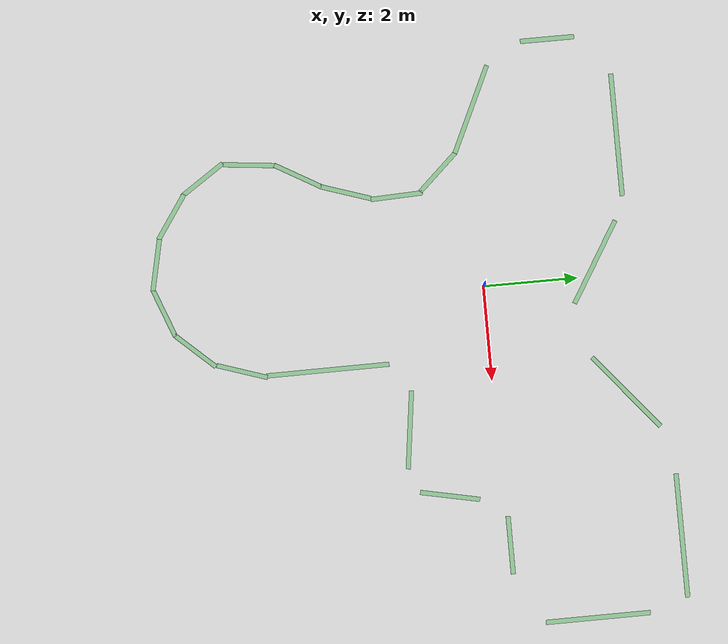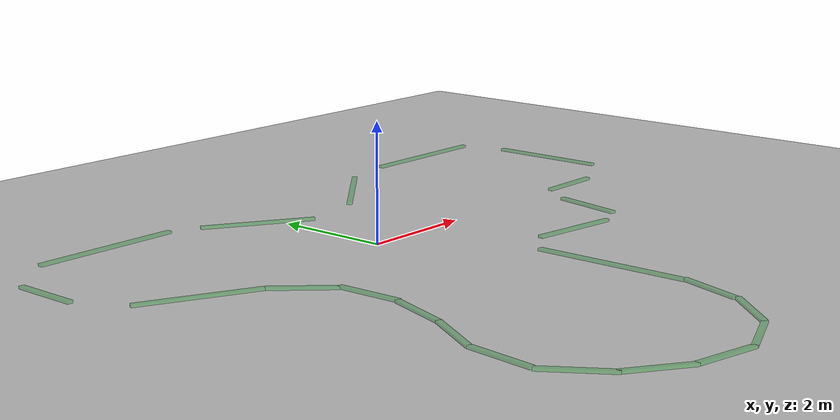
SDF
<sdf version="1.7">
 <world name="default">
  <model name="ground_plane">
   <static>1</static>
   <link name="link">
    <collision name="collision">
     <geometry><plane><normal>0 0 1</normal><size>100 100</size></plane></geometry>
     <surface>
      <contact><collide_bitmask>65535</collide_bitmask></contact>
      <friction><ode><mu>100</mu><mu2>50</mu2></ode></friction>
     </surface>
    </collision>
    <visual name="visual">
     <cast_shadows>0</cast_shadows>
     <geometry><plane><normal>0 0 1</normal><size>100 100</size></plane></geometry>
     <material>
      <script><uri>file://media/materials/scripts/gazebo.material</uri><name>Gazebo/Grey</name></script>
     </material>
    </visual>
   </link>
  </model>
  <model name="map_2_spawn">
   <link name="spawn_1">
    <inertial>
     <mass>1</mass>
     <inertia>
      <ixx>0.166667</ixx>
      <ixy>0</ixy>
      <ixz>0</ixz>
      <iyy>0.166667</iyy>
      <iyz>0</iyz>
      <izz>0.166667</izz>
     </inertia>
    </inertial>
    <pose>-5.15984 3.69945 -0 0 -0 0</pose>
    <visual name="visual">
     <geometry><box><size>0.095881 1.14275 0.053681</size></box></geometry>
     <material>
      <lighting>1</lighting>
      <script><uri>file://media/materials/scripts/gazebo.material</uri><name>Gazebo/Green</name></script>
      <shader type="pixel"><normal_map>__default__</normal_map></shader>
      <ambient>0 1 0 1</ambient>
      <diffuse>0 1 0 1</diffuse>
      <specular>0.1 0.1 0.1 1</specular>
      <emissive>0 0 0 1</emissive>
     </material>
     <transparency>0.6</transparency>
    </visual>
   </link>
   <link name="spawn_2">
    <inertial>
     <mass>1</mass>
     <inertia>
      <ixx>0.166667</ixx>
      <ixy>0</ixy>
      <ixz>0</ixz>
      <iyy>0.166667</iyy>
      <iyz>0</iyz>
      <izz>0.166667</izz>
     </inertia>
    </inertial>
    <pose>-2.99724 4.97804 -0 0 0 -1.56983</pose>
    <visual name="visual">
     <geometry><box><size>0.095881 2.60411 0.053681</size></box></geometry>
     <material>
      <lighting>1</lighting>
      <script><uri>file://media/materials/scripts/gazebo.material</uri><name>Gazebo/Green</name></script>
      <shader type="pixel"><normal_map>__default__</normal_map></shader>
      <ambient>0 1 0 1</ambient>
      <diffuse>0 1 0 1</diffuse>
      <specular>0.1 0.1 0.1 1</specular>
      <emissive>0 0 0 1</emissive>
     </material>
     <transparency>0.6</transparency>
    </visual>
   </link>
   <link name="spawn_3">
    <inertial>
     <mass>1</mass>
     <inertia>
      <ixx>0.166667</ixx>
      <ixy>0</ixy>
      <ixz>0</ixz>
      <iyy>0.166667</iyy>
      <iyz>0</iyz>
      <izz>0.166667</izz>
     </inertia>
    </inertial>
    <pose>-0.349247 4.27348 -0 0 0 -2.11481</pose>
    <visual name="visual">
     <geometry><box><size>0.095881 1.95406 0.053681</size></box></geometry>
     <material>
      <lighting>1</lighting>
      <script><uri>file://media/materials/scripts/gazebo.material</uri><name>Gazebo/Green</name></script>
      <shader type="pixel"><normal_map>__default__</normal_map></shader>
      <ambient>0 1 0 1</ambient>
      <diffuse>0 1 0 1</diffuse>
      <specular>0.1 0.1 0.1 1</specular>
      <emissive>0 0 0 1</emissive>
     </material>
     <transparency>0.6</transparency>
    </visual>
   </link>
   <link name="spawn_4">
    <inertial>
     <mass>1</mass>
     <inertia>
      <ixx>0.166667</ixx>
      <ixy>0</ixy>
      <ixz>0</ixz>
      <iyy>0.166667</iyy>
      <iyz>0</iyz>
      <izz>0.166667</izz>
     </inertia>
    </inertial>
    <pose>2.4418 4.68096 -0 0 0 -0.879866</pose>
    <visual name="visual">
     <geometry><box><size>0.095881 2.03188 0.053681</size></box></geometry>
     <material>
      <lighting>1</lighting>
      <script><uri>file://media/materials/scripts/gazebo.material</uri><name>Gazebo/Green</name></script>
      <shader type="pixel"><normal_map>__default__</normal_map></shader>
      <ambient>0 1 0 1</ambient>
      <diffuse>0 1 0 1</diffuse>
      <specular>0.1 0.1 0.1 1</specular>
      <emissive>0 0 0 1</emissive>
     </material>
     <transparency>0.6</transparency>
    </visual>
   </link>
   <link name="spawn_5">
    <inertial>
     <mass>1</mass>
     <inertia>
      <ixx>0.166667</ixx>
      <ixy>0</ixy>
      <ixz>0</ixz>
      <iyy>0.166667</iyy>
      <iyz>0</iyz>
      <izz>0.166667</izz>
     </inertia>
    </inertial>
    <pose>5.5557 5.56367 -0 0 0 -1.56983</pose>
    <visual name="visual">
     <geometry><box><size>0.095881 2.60411 0.053681</size></box></geometry>
     <material>
      <lighting>1</lighting>
      <script><uri>file://media/materials/scripts/gazebo.material</uri><name>Gazebo/Green</name></script>
      <shader type="pixel"><normal_map>__default__</normal_map></shader>
      <ambient>0 1 0 1</ambient>
      <diffuse>0 1 0 1</diffuse>
      <specular>0.1 0.1 0.1 1</specular>
      <emissive>0 0 0 1</emissive>
     </material>
     <transparency>0.6</transparency>
    </visual>
   </link>
   <link name="spawn_6">
    <inertial>
     <mass>1</mass>
     <inertia>
      <ixx>0.166667</ixx>
      <ixy>0</ixy>
      <ixz>0</ixz>
      <iyy>0.166667</iyy>
      <iyz>0</iyz>
      <izz>0.166667</izz>
     </inertia>
    </inertial>
    <pose>7.11217 3.65327 -0 0 -0 0.004908</pose>
    <visual name="visual">
     <geometry><box><size>0.095881 2.19994 0.053681</size></box></geometry>
     <material>
      <lighting>1</lighting>
      <script><uri>file://media/materials/scripts/gazebo.material</uri><name>Gazebo/Green</name></script>
      <shader type="pixel"><normal_map>__default__</normal_map></shader>
      <ambient>0 1 0 1</ambient>
      <diffuse>0 1 0 1</diffuse>
      <specular>0.1 0.1 0.1 1</specular>
      <emissive>0 0 0 1</emissive>
     </material>
     <transparency>0.6</transparency>
    </visual>
   </link>
   <link name="spawn_7">
    <inertial>
     <mass>1</mass>
     <inertia>
      <ixx>0.166667</ixx>
      <ixy>0</ixy>
      <ixz>0</ixz>
      <iyy>0.166667</iyy>
      <iyz>0</iyz>
      <izz>0.166667</izz>
     </inertia>
    </inertial>
    <pose>5.43994 1.95606 -0 0 0 -1.56983</pose>
    <visual name="visual">
     <geometry><box><size>0.095881 1.21596 0.053681</size></box></geometry>
     <material>
      <lighting>1</lighting>
      <script><uri>file://media/materials/scripts/gazebo.material</uri><name>Gazebo/Green</name></script>
      <shader type="pixel"><normal_map>__default__</normal_map></shader>
      <ambient>0 1 0 1</ambient>
      <diffuse>0 1 0 1</diffuse>
      <specular>0.1 0.1 0.1 1</specular>
      <emissive>0 0 0 1</emissive>
     </material>
     <transparency>0.6</transparency>
    </visual>
   </link>
   <link name="spawn_8">
    <inertial>
     <mass>1</mass>
     <inertia>
      <ixx>0.166667</ixx>
      <ixy>0</ixy>
      <ixz>0</ixz>
      <iyy>0.166667</iyy>
      <iyz>0</iyz>
      <izz>0.166667</izz>
     </inertia>
    </inertial>
    <pose>4.29214 0.78239 -0 0 -0 2.93619</pose>
    <visual name="visual">
     <geometry><box><size>0.095881 1.26839 0.053681</size></box></geometry>
     <material>
      <lighting>1</lighting>
      <script><uri>file://media/materials/scripts/gazebo.material</uri><name>Gazebo/Green</name></script>
      <shader type="pixel"><normal_map>__default__</normal_map></shader>
      <ambient>0 1 0 1</ambient>
      <diffuse>0 1 0 1</diffuse>
      <specular>0.1 0.1 0.1 1</specular>
      <emissive>0 0 0 1</emissive>
     </material>
     <transparency>0.6</transparency>
    </visual>
   </link>
   <link name="spawn_9">
    <inertial>
     <mass>1</mass>
     <inertia>
      <ixx>0.166667</ixx>
      <ixy>0</ixy>
      <ixz>0</ixz>
      <iyy>0.166667</iyy>
      <iyz>0</iyz>
      <izz>0.166667</izz>
     </inertia>
    </inertial>
    <pose>2.8348 0.060357 -0 0 0 -1.70192</pose>
    <visual name="visual">
     <geometry><box><size>0.095881 1.65188 0.053681</size></box></geometry>
     <material>
      <lighting>1</lighting>
      <script><uri>file://media/materials/scripts/gazebo.material</uri><name>Gazebo/Green</name></script>
      <shader type="pixel"><normal_map>__default__</normal_map></shader>
      <ambient>0 1 0 1</ambient>
      <diffuse>0 1 0 1</diffuse>
      <specular>0.1 0.1 0.1 1</specular>
      <emissive>0 0 0 1</emissive>
     </material>
     <transparency>0.6</transparency>
    </visual>
   </link>
   <link name="spawn_10">
    <inertial>
     <mass>1</mass>
     <inertia>
      <ixx>0.166667</ixx>
      <ixy>0</ixy>
      <ixz>0</ixz>
      <iyy>0.166667</iyy>
      <iyz>0</iyz>
      <izz>0.166667</izz>
     </inertia>
    </inertial>
    <pose>1.42125 -1.55195 -0 0 -0 0.005819</pose>
    <visual name="visual">
     <geometry><box><size>0.095881 2.60411 0.053681</size></box></geometry>
     <material>
      <lighting>1</lighting>
      <script><uri>file://media/materials/scripts/gazebo.material</uri><name>Gazebo/Green</name></script>
      <shader type="pixel"><normal_map>__default__</normal_map></shader>
      <ambient>0 1 0 1</ambient>
      <diffuse>0 1 0 1</diffuse>
      <specular>0.1 0.1 0.1 1</specular>
      <emissive>0 0 0 1</emissive>
     </material>
     <transparency>0.6</transparency>
    </visual>
   </link>
   <link name="spawn_11">
    <inertial>
     <mass>1</mass>
     <inertia>
      <ixx>0.166667</ixx>
      <ixy>0</ixy>
      <ixz>0</ixz>
      <iyy>0.166667</iyy>
      <iyz>0</iyz>
      <izz>0.166667</izz>
     </inertia>
    </inertial>
    <pose>1.28966 -3.35226 -0 0 0 -0.320064</pose>
    <visual name="visual">
     <geometry><box><size>0.095881 1.10008 0.053681</size></box></geometry>
     <material>
      <lighting>1</lighting>
      <script><uri>file://media/materials/scripts/gazebo.material</uri><name>Gazebo/Green</name></script>
      <shader type="pixel"><normal_map>__default__</normal_map></shader>
      <ambient>0 1 0 1</ambient>
      <diffuse>0 1 0 1</diffuse>
      <specular>0.1 0.1 0.1 1</specular>
      <emissive>0 0 0 1</emissive>
     </material>
     <transparency>0.6</transparency>
    </visual>
   </link>
   <link name="spawn_12">
    <inertial>
     <mass>1</mass>
     <inertia>
      <ixx>0.166667</ixx>
      <ixy>0</ixy>
      <ixz>0</ixz>
      <iyy>0.166667</iyy>
      <iyz>0</iyz>
      <izz>0.166667</izz>
     </inertia>
    </inertial>
    <pose>0.770118 -4.30328 -0 0 0 -0.737399</pose>
    <visual name="visual">
     <geometry><box><size>0.095881 1.10008 0.053681</size></box></geometry>
     <material>
      <lighting>1</lighting>
      <script><uri>file://media/materials/scripts/gazebo.material</uri><name>Gazebo/Green</name></script>
      <shader type="pixel"><normal_map>__default__</normal_map></shader>
      <ambient>0 1 0 1</ambient>
      <diffuse>0 1 0 1</diffuse>
      <specular>0.1 0.1 0.1 1</specular>
      <emissive>0 0 0 1</emissive>
     </material>
     <transparency>0.6</transparency>
    </visual>
   </link>
   <link name="spawn_13">
    <inertial>
     <mass>1</mass>
     <inertia>
      <ixx>0.166667</ixx>
      <ixy>0</ixy>
      <ixz>0</ixz>
      <iyy>0.166667</iyy>
      <iyz>0</iyz>
      <izz>0.166667</izz>
     </inertia>
    </inertial>
    <pose>-0.087084 -4.88907 -0 0 0 -1.20498</pose>
    <visual name="visual">
     <geometry><box><size>0.095881 1.10008 0.053681</size></box></geometry>
     <material>
      <lighting>1</lighting>
      <script><uri>file://media/materials/scripts/gazebo.material</uri><name>Gazebo/Green</name></script>
      <shader type="pixel"><normal_map>__default__</normal_map></shader>
      <ambient>0 1 0 1</ambient>
      <diffuse>0 1 0 1</diffuse>
      <specular>0.1 0.1 0.1 1</specular>
      <emissive>0 0 0 1</emissive>
     </material>
     <transparency>0.6</transparency>
    </visual>
   </link>
   <link name="spawn_14">
    <inertial>
     <mass>1</mass>
     <inertia>
      <ixx>0.166667</ixx>
      <ixy>0</ixy>
      <ixz>0</ixz>
      <iyy>0.166667</iyy>
      <iyz>0</iyz>
      <izz>0.166667</izz>
     </inertia>
    </inertial>
    <pose>-1.11299 -4.96881 -0 0 0 -1.78016</pose>
    <visual name="visual">
     <geometry><box><size>0.095881 1.10008 0.053681</size></box></geometry>
     <material>
      <lighting>1</lighting>
      <script><uri>file://media/materials/scripts/gazebo.material</uri><name>Gazebo/Green</name></script>
      <shader type="pixel"><normal_map>__default__</normal_map></shader>
      <ambient>0 1 0 1</ambient>
      <diffuse>0 1 0 1</diffuse>
      <specular>0.1 0.1 0.1 1</specular>
      <emissive>0 0 0 1</emissive>
     </material>
     <transparency>0.6</transparency>
    </visual>
   </link>
   <link name="spawn_15">
    <inertial>
     <mass>1</mass>
     <inertia>
      <ixx>0.166667</ixx>
      <ixy>0</ixy>
      <ixz>0</ixz>
      <iyy>0.166667</iyy>
      <iyz>0</iyz>
      <izz>0.166667</izz>
     </inertia>
    </inertial>
    <pose>-2.09573 -4.56414 -0 0 -0 0.972828</pose>
    <visual name="visual">
     <geometry><box><size>0.095881 1.10008 0.053681</size></box></geometry>
     <material>
      <lighting>1</lighting>
      <script><uri>file://media/materials/scripts/gazebo.material</uri><name>Gazebo/Green</name></script>
      <shader type="pixel"><normal_map>__default__</normal_map></shader>
      <ambient>0 1 0 1</ambient>
      <diffuse>0 1 0 1</diffuse>
      <specular>0.1 0.1 0.1 1</specular>
      <emissive>0 0 0 1</emissive>
     </material>
     <transparency>0.6</transparency>
    </visual>
   </link>
   <link name="spawn_16">
    <inertial>
     <mass>1</mass>
     <inertia>
      <ixx>0.166667</ixx>
      <ixy>0</ixy>
      <ixz>0</ixz>
      <iyy>0.166667</iyy>
      <iyz>0</iyz>
      <izz>0.166667</izz>
     </inertia>
    </inertial>
    <pose>-2.82591 -3.84279 -0 0 -0 0.593422</pose>
    <visual name="visual">
     <geometry><box><size>0.095881 1.10008 0.053681</size></box></geometry>
     <material>
      <lighting>1</lighting>
      <script><uri>file://media/materials/scripts/gazebo.material</uri><name>Gazebo/Green</name></script>
      <shader type="pixel"><normal_map>__default__</normal_map></shader>
      <ambient>0 1 0 1</ambient>
      <diffuse>0 1 0 1</diffuse>
      <specular>0.1 0.1 0.1 1</specular>
      <emissive>0 0 0 1</emissive>
     </material>
     <transparency>0.6</transparency>
    </visual>
   </link>
   <link name="spawn_17">
    <inertial>
     <mass>1</mass>
     <inertia>
      <ixx>0.166667</ixx>
      <ixy>0</ixy>
      <ixz>0</ixz>
      <iyy>0.166667</iyy>
      <iyz>0</iyz>
      <izz>0.166667</izz>
     </inertia>
    </inertial>
    <pose>-3.0501 -2.8282 -0 0 0 -0.106657</pose>
    <visual name="visual">
     <geometry><box><size>0.095881 1.10008 0.053681</size></box></geometry>
     <material>
      <lighting>1</lighting>
      <script><uri>file://media/materials/scripts/gazebo.material</uri><name>Gazebo/Green</name></script>
      <shader type="pixel"><normal_map>__default__</normal_map></shader>
      <ambient>0 1 0 1</ambient>
      <diffuse>0 1 0 1</diffuse>
      <specular>0.1 0.1 0.1 1</specular>
      <emissive>0 0 0 1</emissive>
     </material>
     <transparency>0.6</transparency>
    </visual>
   </link>
   <link name="spawn_18">
    <inertial>
     <mass>1</mass>
     <inertia>
      <ixx>0.166667</ixx>
      <ixy>0</ixy>
      <ixz>0</ixz>
      <iyy>0.166667</iyy>
      <iyz>0</iyz>
      <izz>0.166667</izz>
     </inertia>
    </inertial>
    <pose>-2.7278 -1.82003 -0 0 0 -0.519876</pose>
    <visual name="visual">
     <geometry><box><size>0.095881 1.10008 0.053681</size></box></geometry>
     <material>
      <lighting>1</lighting>
      <script><uri>file://media/materials/scripts/gazebo.material</uri><name>Gazebo/Green</name></script>
      <shader type="pixel"><normal_map>__default__</normal_map></shader>
      <ambient>0 1 0 1</ambient>
      <diffuse>0 1 0 1</diffuse>
      <specular>0.1 0.1 0.1 1</specular>
      <emissive>0 0 0 1</emissive>
     </material>
     <transparency>0.6</transparency>
    </visual>
   </link>
   <link name="spawn_19">
    <inertial>
     <mass>1</mass>
     <inertia>
      <ixx>0.166667</ixx>
      <ixy>0</ixy>
      <ixz>0</ixz>
      <iyy>0.166667</iyy>
      <iyz>0</iyz>
      <izz>0.166667</izz>
     </inertia>
    </inertial>
    <pose>-2.28677 -0.841378 -0 0 0 -0.320064</pose>
    <visual name="visual">
     <geometry><box><size>0.095881 1.10008 0.053681</size></box></geometry>
     <material>
      <lighting>1</lighting>
      <script><uri>file://media/materials/scripts/gazebo.material</uri><name>Gazebo/Green</name></script>
      <shader type="pixel"><normal_map>__default__</normal_map></shader>
      <ambient>0 1 0 1</ambient>
      <diffuse>0 1 0 1</diffuse>
      <specular>0.1 0.1 0.1 1</specular>
      <emissive>0 0 0 1</emissive>
     </material>
     <transparency>0.6</transparency>
    </visual>
   </link>
   <link name="spawn_20">
    <inertial>
     <mass>1</mass>
     <inertia>
      <ixx>0.166667</ixx>
      <ixy>0</ixy>
      <ixz>0</ixz>
      <iyy>0.166667</iyy>
      <iyz>0</iyz>
      <izz>0.166667</izz>
     </inertia>
    </inertial>
    <pose>-2.11516 0.224019 -0 0 -0 0.040494</pose>
    <visual name="visual">
     <geometry><box><size>0.095881 1.10008 0.053681</size></box></geometry>
     <material>
      <lighting>1</lighting>
      <script><uri>file://media/materials/scripts/gazebo.material</uri><name>Gazebo/Green</name></script>
      <shader type="pixel"><normal_map>__default__</normal_map></shader>
      <ambient>0 1 0 1</ambient>
      <diffuse>0 1 0 1</diffuse>
      <specular>0.1 0.1 0.1 1</specular>
      <emissive>0 0 0 1</emissive>
     </material>
     <transparency>0.6</transparency>
    </visual>
   </link>
   <link name="spawn_21">
    <inertial>
     <mass>1</mass>
     <inertia>
      <ixx>0.166667</ixx>
      <ixy>0</ixy>
      <ixz>0</ixz>
      <iyy>0.166667</iyy>
      <iyz>0</iyz>
      <izz>0.166667</izz>
     </inertia>
    </inertial>
    <pose>-2.54026 1.13762 -0 0 0 -2.39094</pose>
    <visual name="visual">
     <geometry><box><size>0.095881 1.10008 0.053681</size></box></geometry>
     <material>
      <lighting>1</lighting>
      <script><uri>file://media/materials/scripts/gazebo.material</uri><name>Gazebo/Green</name></script>
      <shader type="pixel"><normal_map>__default__</normal_map></shader>
      <ambient>0 1 0 1</ambient>
      <diffuse>0 1 0 1</diffuse>
      <specular>0.1 0.1 0.1 1</specular>
      <emissive>0 0 0 1</emissive>
     </material>
     <transparency>0.6</transparency>
    </visual>
   </link>
   <link name="spawn_22">
    <inertial>
     <mass>1</mass>
     <inertia>
      <ixx>0.166667</ixx>
      <ixy>0</ixy>
      <ixz>0</ixz>
      <iyy>0.166667</iyy>
      <iyz>0</iyz>
      <izz>0.166667</izz>
     </inertia>
    </inertial>
    <pose>-3.80944 1.9526 -0 0 0 -2.00633</pose>
    <visual name="visual">
     <geometry><box><size>0.095881 1.98564 0.053681</size></box></geometry>
     <material>
      <lighting>1</lighting>
      <script><uri>file://media/materials/scripts/gazebo.material</uri><name>Gazebo/Green</name></script>
      <shader type="pixel"><normal_map>__default__</normal_map></shader>
      <ambient>0 1 0 1</ambient>
      <diffuse>0 1 0 1</diffuse>
      <specular>0.1 0.1 0.1 1</specular>
      <emissive>0 0 0 1</emissive>
     </material>
     <transparency>0.6</transparency>
    </visual>
   </link>
   <static>1</static>
   <pose>0.044428 -1.88326 0 0 -0 0</pose>
  </model>
 </world>
</sdf>
